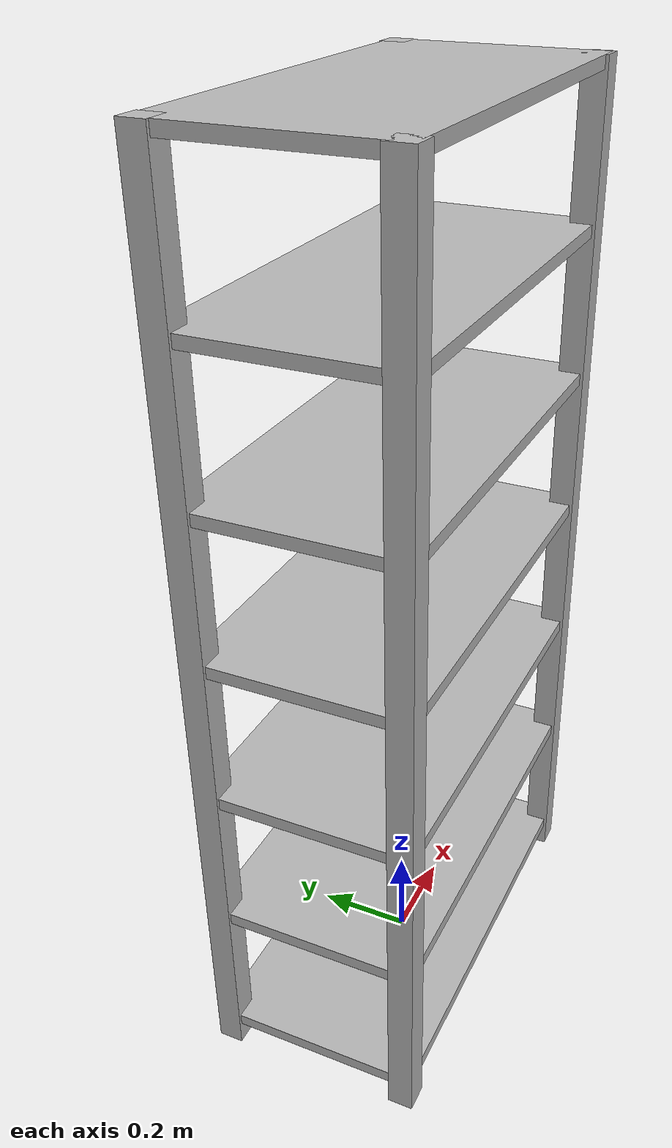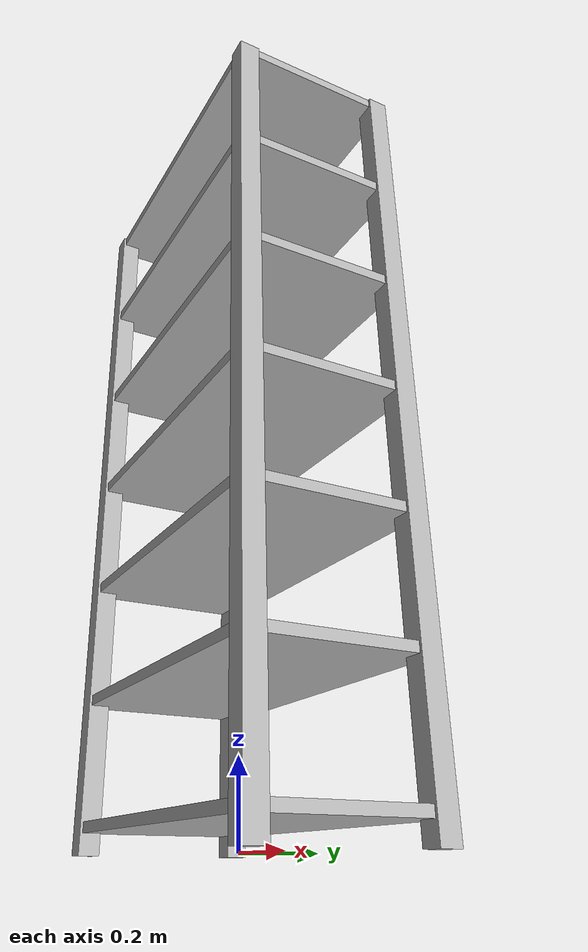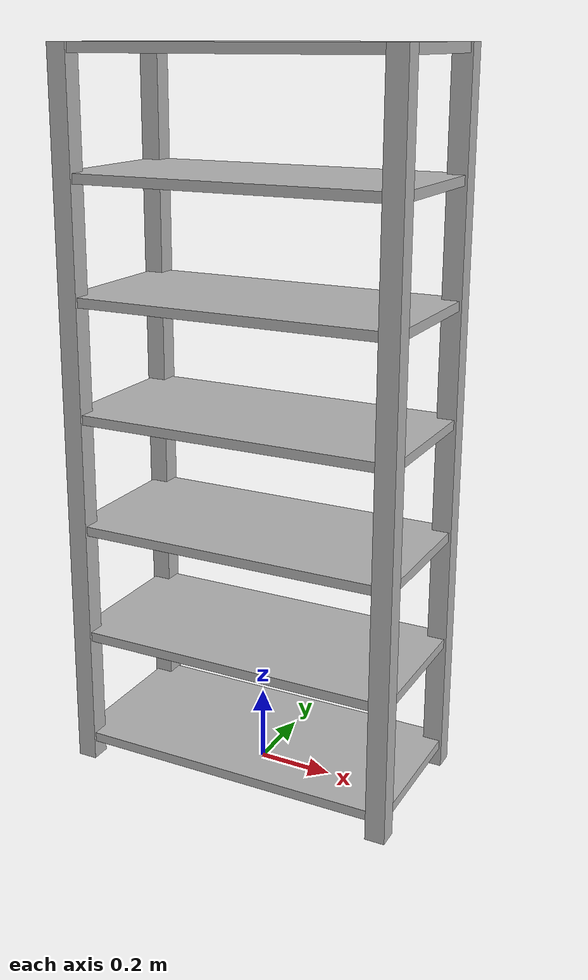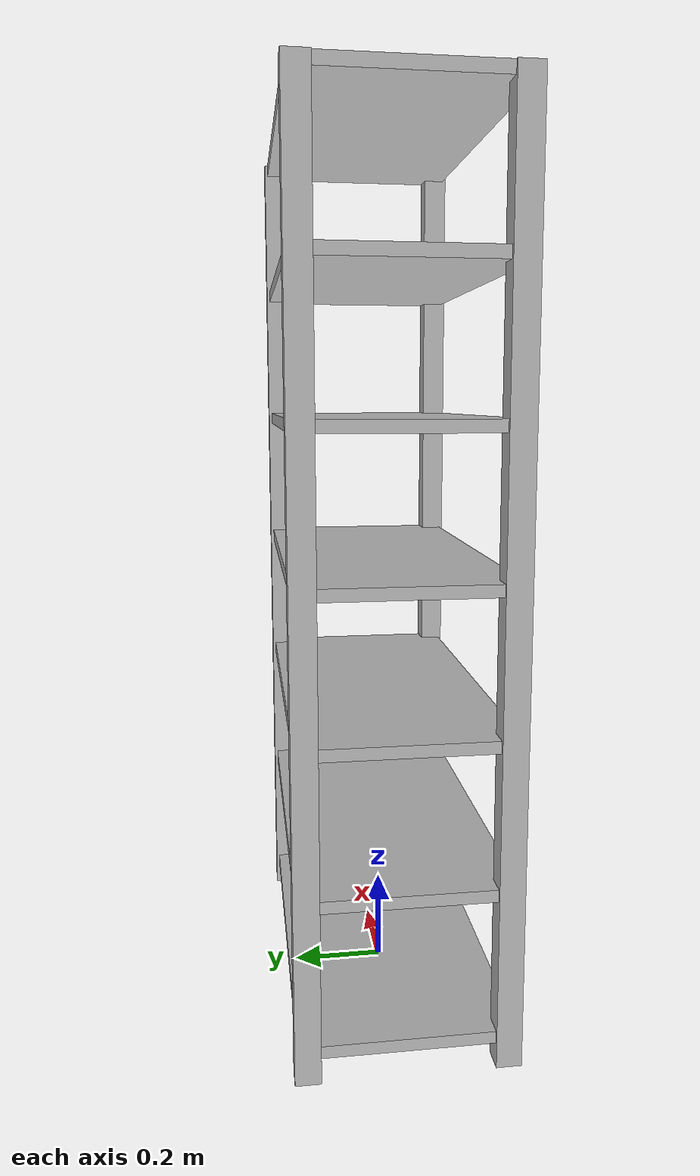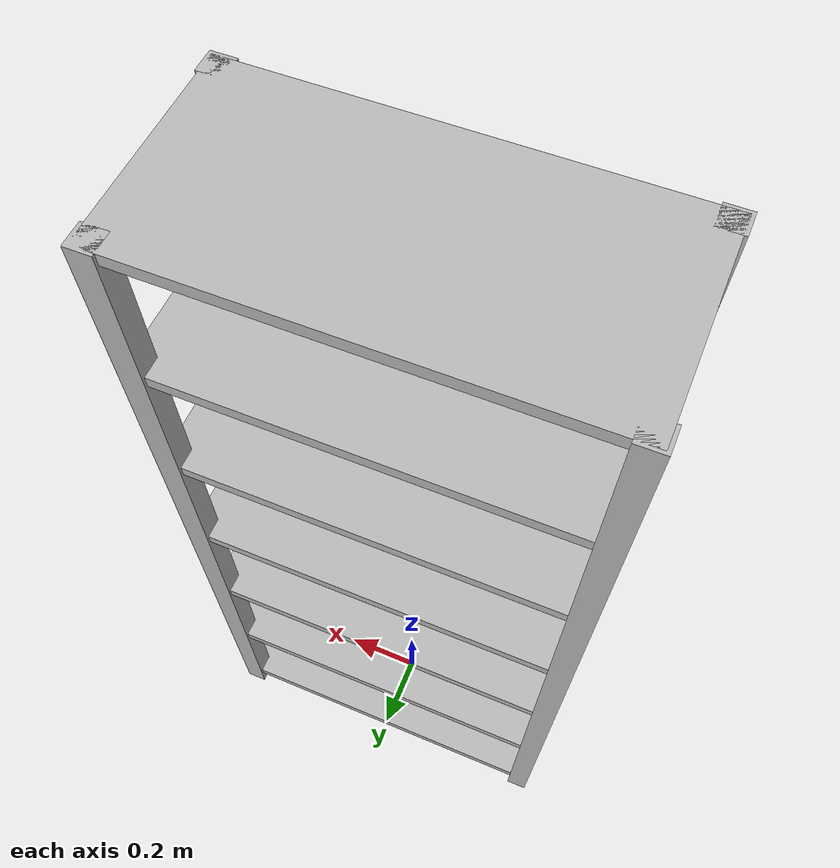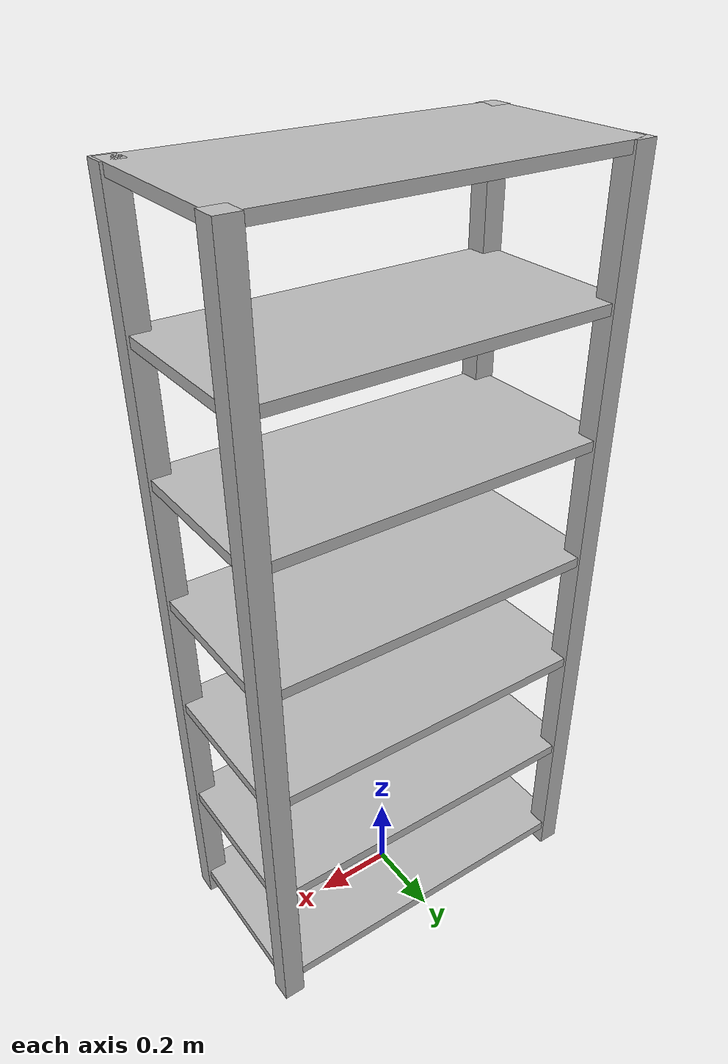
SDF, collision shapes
<?xml version="1.0" ?>
<sdf version="1.6">
    <model name="Picking_Shelves">
        <link name="base_link">
            <visual name="base_visual">
                <geometry>
                    <mesh>
                        <uri>base_visual.glb</uri>
                    </mesh>
                </geometry>
            </visual>
            <collision name="pickingshelvesshort_collider_box">
                <pose>0.0 0.0 0.0635 0.0 0.0 0.0</pose>
                <geometry>
                    <box>
                        <size>0.9017 0.444312 0.0254</size>
                    </box>
                </geometry>
            </collision>
            <collision name="pickingshelvesshort005_collider_box">
                <pose>0.0 0.0 0.3683 0.0 0.0 0.0</pose>
                <geometry>
                    <box>
                        <size>0.9017 0.444312 0.0254</size>
                    </box>
                </geometry>
            </collision>
            <collision name="pickingshelvesshort010_collider_box">
                <pose>0.0 0.0 0.6731 0.0 0.0 0.0</pose>
                <geometry>
                    <box>
                        <size>0.9017 0.444312 0.0254</size>
                    </box>
                </geometry>
            </collision>
            <collision name="pickingshelvesshort015_collider_box">
                <pose>0.0 0.0 0.9779 0.0 0.0 0.0</pose>
                <geometry>
                    <box>
                        <size>0.9017 0.444312 0.0254</size>
                    </box>
                </geometry>
            </collision>
            <collision name="pickingshelvesshort020_collider_box">
                <pose>0.0 0.0 1.2827 0.0 0.0 0.0</pose>
                <geometry>
                    <box>
                        <size>0.9017 0.444312 0.0254</size>
                    </box>
                </geometry>
            </collision>
            <collision name="pickingshelvesshort025_collider_box">
                <pose>0.0 0.0 1.5875 0.0 0.0 0.0</pose>
                <geometry>
                    <box>
                        <size>0.9017 0.444312 0.0254</size>
                    </box>
                </geometry>
            </collision>
            <collision name="pickingshelvesshort030_collider_box">
                <pose>0.0 0.0 1.8923 0.0 0.0 0.0</pose>
                <geometry>
                    <box>
                        <size>0.9017 0.444312 0.0254</size>
                    </box>
                </geometry>
            </collision>
            <collision name="pickingshelvesshort035_collider_box">
                <pose>-0.431013 -0.202413 0.9525 0.0 0.0 0.0</pose>
                <geometry>
                    <box>
                        <size>0.052375 0.052375 1.905</size>
                    </box>
                </geometry>
            </collision>
            <collision name="pickingshelvesshort036_collider_box">
                <pose>-0.431013 0.202413 0.9525 0.0 0.0 0.0</pose>
                <geometry>
                    <box>
                        <size>0.052375 0.052375 1.905</size>
                    </box>
                </geometry>
            </collision>
            <collision name="pickingshelvesshort037_collider_box">
                <pose>0.431013 -0.202413 0.9525 0.0 0.0 0.0</pose>
                <geometry>
                    <box>
                        <size>0.052375 0.052375 1.905</size>
                    </box>
                </geometry>
            </collision>
            <collision name="pickingshelvesshort038_collider_box">
                <pose>0.431013 0.202413 0.9525 0.0 0.0 0.0</pose>
                <geometry>
                    <box>
                        <size>0.052375 0.052375 1.905</size>
                    </box>
                </geometry>
            </collision>
        </link>
    </model>
</sdf>
